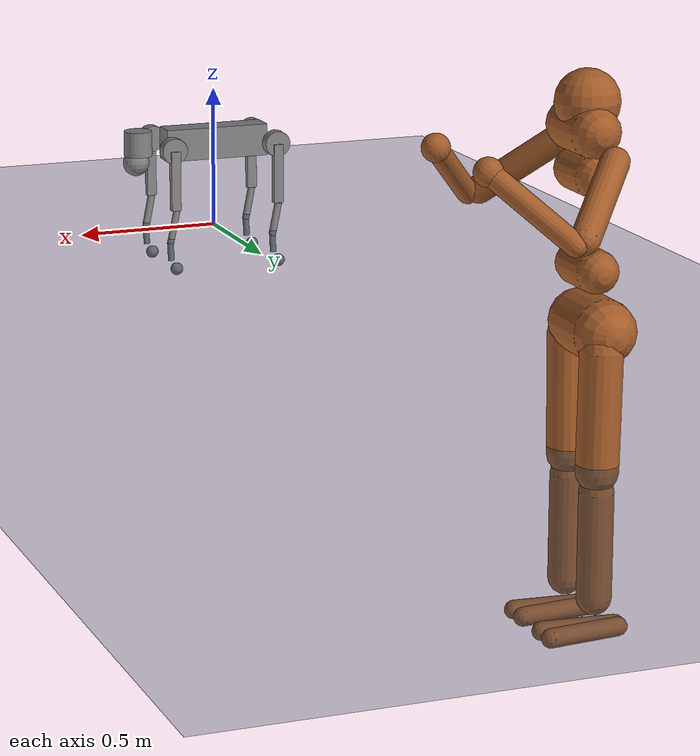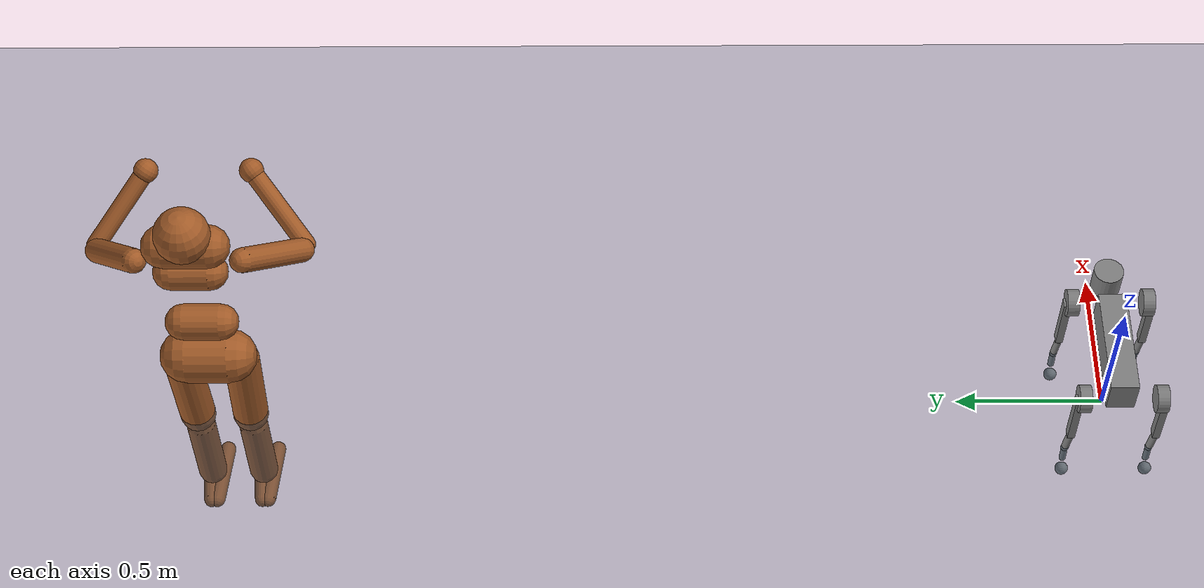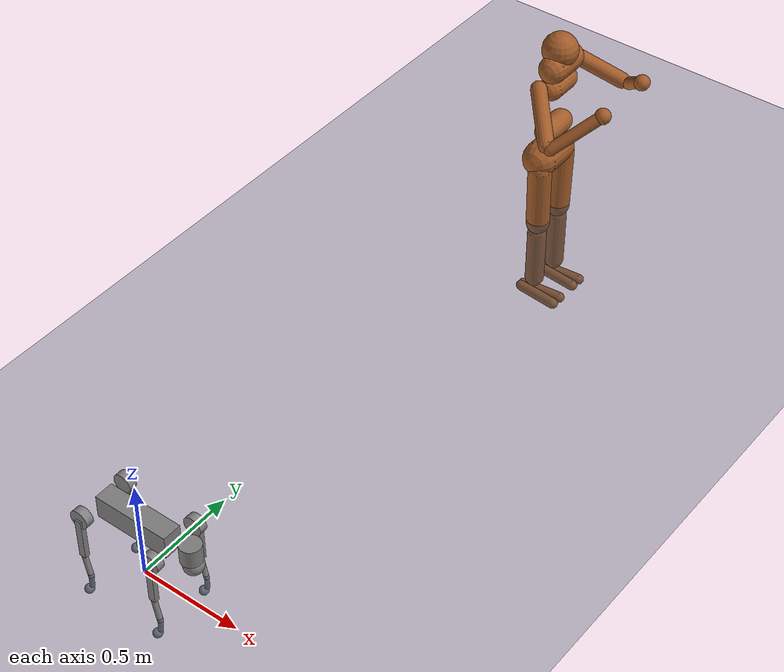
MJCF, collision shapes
<?xml version="1.0" ?>
<mujoco model="go2_human_follow">
  <compiler angle="radian" meshdir="unitree_go2/assets" autolimits="true"/>

  <option timestep="0.005" cone="elliptic" impratio="100" gravity="0 0 -9.81"/>

  <visual>
    <map force="0.1" zfar="30"/>
    <rgba haze="0.15 0.25 0.35 1"/>
    <global offwidth="2560" offheight="1440" elevation="-20" azimuth="120"/>
  </visual>

  <statistic center="0 0 0.7"/>

  <asset>
    <!-- 人体材质 -->
    <texture type="skybox" builtin="gradient" rgb1=".3 .5 .7" rgb2="0 0 0" width="32" height="512"/>
    <texture name="body" type="cube" builtin="flat" mark="cross" width="128" height="128" rgb1="0.8 0.6 0.4" rgb2="0.8 0.6 0.4" markrgb="1 1 1"/>
    <material name="body" texture="body" texuniform="true" rgba="0.8 0.6 .4 1"/>
    <texture name="grid" type="2d" builtin="checker" width="512" height="512" rgb1=".1 .2 .3" rgb2=".2 .3 .4"/>
    <material name="grid" texture="grid" texrepeat="1 1" texuniform="true" reflectance=".2"/>

    <!-- Go2材质 -->
    <material name="metal" rgba=".9 .95 .95 1"/>
    <material name="black" rgba="0 0 0 1"/>
    <material name="white" rgba="1 1 1 1"/>
    <material name="gray" rgba="0.671705 0.692426 0.774270 1"/>

    <!-- Go2网格文件 -->
    <mesh file="base_0.obj"/>
    <mesh file="base_1.obj"/>
    <mesh file="base_2.obj"/>
    <mesh file="base_3.obj"/>
    <mesh file="base_4.obj"/>
    <mesh file="hip_0.obj"/>
    <mesh file="hip_1.obj"/>
    <mesh file="thigh_0.obj"/>
    <mesh file="thigh_1.obj"/>
    <mesh file="thigh_mirror_0.obj"/>
    <mesh file="thigh_mirror_1.obj"/>
    <mesh file="calf_0.obj"/>
    <mesh file="calf_1.obj"/>
    <mesh file="calf_mirror_0.obj"/>
    <mesh file="calf_mirror_1.obj"/>
    <mesh file="foot.obj"/>
  </asset>

  <default>
    <!-- 人体默认设置 -->
    <motor ctrlrange="-1 1" ctrllimited="true"/>
    <default class="human_body">
      <geom type="capsule" condim="3" friction="0.8 0.005 0.0001" solimp=".95 .99 .001" solref=".02 1" material="body" group="1"/>
      <default class="thigh">
        <geom size=".06"/>
      </default>
      <default class="shin">
        <geom fromto="0 0 0 0 0 -.3"  size=".049"/>
      </default>
      <default class="foot">
        <geom size=".027"/>
        <default class="foot1">
          <geom fromto="-.07 -.01 0 .14 -.03 0"/>
        </default>
        <default class="foot2">
          <geom fromto="-.07 .01 0 .14  .03 0"/>
        </default>
      </default>
      <default class="arm_upper">
        <geom size=".04"/>
      </default>
      <default class="arm_lower">
        <geom size=".031"/>
      </default>
      <default class="hand">
        <geom type="sphere" size=".04"/>
      </default>
      <joint type="hinge" damping=".2" stiffness="1" armature=".01" limited="true" solimplimit="0 .99 .01"/>
      <default class="joint_big">
        <joint damping="5" stiffness="10"/>
        <default class="hip_x">
          <joint range="-30 10"/>
        </default>
        <default class="hip_z">
          <joint range="-60 35"/>
        </default>
        <default class="hip_y">
          <joint axis="0 1 0" range="-150 20"/>
        </default>
        <default class="joint_big_stiff">
          <joint stiffness="20"/>
        </default>
      </default>
      <default class="knee">
        <joint pos="0 0 .02" axis="0 -1 0" range="-160 2"/>
      </default>
      <default class="ankle">
        <joint range="-50 50"/>
        <default class="ankle_y">
          <joint pos="0 0 .08" axis="0 1 0" stiffness="6"/>
        </default>
        <default class="ankle_x">
          <joint pos="0 0 .04" stiffness="3"/>
        </default>
      </default>
      <default class="shoulder">
        <joint range="-85 60"/>
      </default>
      <default class="elbow">
        <joint range="-100 50" stiffness="0"/>
      </default>
    </default>

    <!-- Go2默认设置 -->
    <default class="go2">
      <geom friction="0.6" margin="0.001" condim="1"/>
      <joint axis="0 1 0" damping="2" armature="0.01" frictionloss="0.2"/>
      <motor ctrlrange="-23.7 23.7"/>
      <default class="go2_abduction">
        <joint axis="1 0 0" range="-1.0472 1.0472"/>
      </default>
      <default class="go2_hip">
        <default class="go2_front_hip">
          <joint range="-1.5708 3.4907"/>
        </default>
        <default class="go2_back_hip">
          <joint range="-0.5236 4.5379"/>
        </default>
      </default>
      <default class="go2_knee">
        <joint range="-2.7227 -0.83776"/>
        <motor ctrlrange="-45.43 45.43"/>
      </default>
      <default class="go2_visual">
        <geom type="mesh" contype="0" conaffinity="0" group="2"/>
      </default>
      <default class="go2_collision">
        <geom group="3"/>
        <default class="go2_foot">
          <geom size="0.022" pos="-0.002 0 -0.213" priority="1" solimp="0.015 1 0.022" condim="6"
            friction="0.8 0.02 0.01"/>
        </default>
      </default>
    </default>
  </default>

  <worldbody>
    <!-- 地面 -->
    <geom name="floor" size="0 0 .05" type="plane" material="grid" condim="3"/>

    <!-- 灯光 -->
    <light name="spotlight" mode="targetbodycom" target="human" diffuse=".8 .8 .8" specular="0.3 0.3 0.3" pos="0 -6 4" cutoff="30"/>
    <light name="top" pos="0 0 2" mode="trackcom"/>

    <!-- 人体模型 -->
    <body name="human" pos="0 3 0.9" childclass="human_body">
      <freejoint name="human_root"/>
      <camera name="human_back" pos="-3 0 1" xyaxes="0 -1 0 1 0 2" mode="trackcom"/>
      <camera name="human_side" pos="0 -3 1" xyaxes="1 0 0 0 1 2" mode="trackcom"/>
      <inertial pos="0 0 0" mass="65" diaginertia="2.5 2.5 1.5"/>
      <geom name="torso" fromto="0 -.07 0 0 .07 0" size=".07"/>
      <body name="waist_upper" pos="-.01 0 -.12">
        <geom name="waist_upper_geom" fromto="0 -.06 0 0 .06 0" size=".06"/>
        <joint name="waist_joint" pos="0 0 .06" axis="0 0 1" range="-45 45" class="joint_big_stiff"/>
      <body name="head" pos="0 0 .19">
        <inertial pos="0 0 .05" mass="5" diaginertia="0.05 0.05 0.03"/>
        <geom name="head" type="sphere" size=".09"/>
        <camera name="human_egocentric" pos=".09 0 0" xyaxes="0 -1 0 .1 0 1" fovy="80"/>
      </body>
      <body name="waist_lower" pos="-.01 0 -.26">
        <inertial pos="0 0 -.05" mass="15" diaginertia="0.3 0.3 0.2"/>
        <geom name="waist_lower" fromto="0 -.06 0 0 .06 0" size=".06"/>
        <joint name="abdomen_z" pos="0 0 .065" axis="0 0 1" range="-45 45" class="joint_big_stiff"/>
        <joint name="abdomen_y" pos="0 0 .065" axis="0 1 0" range="-75 30" class="joint_big"/>
        <body name="pelvis" pos="0 0 -.165">
          <inertial pos="0 0 -.05" mass="10" diaginertia="0.2 0.2 0.15"/>
          <joint name="abdomen_x" pos="0 0 .1" axis="1 0 0" range="-35 35" class="joint_big"/>
          <geom name="butt" fromto="-.02 -.07 0 -.02 .07 0" size=".09"/>
          <body name="thigh_right" pos="0 -.1 -.04">
            <inertial pos="0 0 -.15" mass="6" diaginertia="0.1 0.1 0.05"/>
            <joint name="hip_x_right" axis="1 0 0" class="hip_x"/>
            <joint name="hip_z_right" axis="0 0 1" class="hip_z"/>
            <joint name="hip_y_right" class="hip_y"/>
            <geom name="thigh_right" fromto="0 0 0 0 .01 -.34" class="thigh"/>
            <body name="shin_right" pos="0 .01 -.4">
              <inertial pos="0 0 -.15" mass="3" diaginertia="0.04 0.04 0.02"/>
              <joint name="knee_right" class="knee"/>
              <geom name="shin_right" class="shin"/>
              <body name="foot_right" pos="0 0 -.39">
                <inertial pos="0 0 0" mass="1.5" diaginertia="0.01 0.01 0.005"/>
                <joint name="ankle_y_right" class="ankle_y"/>
                <joint name="ankle_x_right" class="ankle_x" axis="1 0 .5"/>
                <geom name="foot1_right" class="foot1"/>
                <geom name="foot2_right" class="foot2"/>
              </body>
            </body>
          </body>
          <body name="thigh_left" pos="0 .1 -.04">
            <inertial pos="0 0 -.15" mass="6" diaginertia="0.1 0.1 0.05"/>
            <joint name="hip_x_left" axis="-1 0 0" class="hip_x"/>
            <joint name="hip_z_left" axis="0 0 -1" class="hip_z"/>
            <joint name="hip_y_left" class="hip_y"/>
            <geom name="thigh_left" fromto="0 0 0 0 -.01 -.34" class="thigh"/>
            <body name="shin_left" pos="0 -.01 -.4">
              <inertial pos="0 0 -.15" mass="3" diaginertia="0.04 0.04 0.02"/>
              <joint name="knee_left" class="knee"/>
              <geom name="shin_left" fromto="0 0 0 0 0 -.3" class="shin"/>
              <body name="foot_left" pos="0 0 -.39">
                <inertial pos="0 0 0" mass="1.5" diaginertia="0.01 0.01 0.005"/>
                <joint name="ankle_y_left" class="ankle_y"/>
                <joint name="ankle_x_left" class="ankle_x" axis="-1 0 -.5"/>
                <geom name="foot1_left" class="foot1"/>
                <geom name="foot2_left" class="foot2"/>
              </body>
            </body>
          </body>
        </body>
      </body>
      <body name="upper_arm_right" pos="0 -.17 .06">
        <inertial pos="0.08 -0.08 -0.08" mass="2.5" diaginertia="0.03 0.03 0.015"/>
        <joint name="shoulder1_right" axis="2 1 1"  class="shoulder"/>
        <joint name="shoulder2_right" axis="0 -1 1" class="shoulder"/>
        <geom name="upper_arm_right" fromto="0 0 0 .16 -.16 -.16" class="arm_upper"/>
        <body name="lower_arm_right" pos=".18 -.18 -.18">
          <inertial pos="0.09 0.09 0.09" mass="1.5" diaginertia="0.015 0.015 0.008"/>
          <joint name="elbow_right" axis="0 -1 1" class="elbow"/>
          <geom name="lower_arm_right" fromto=".01 .01 .01 .17 .17 .17" class="arm_lower"/>
          <body name="hand_right" pos=".18 .18 .18">
            <inertial pos="0 0 0" mass="0.5" diaginertia="0.002 0.002 0.001"/>
            <geom name="hand_right" zaxis="1 1 1" class="hand"/>
          </body>
        </body>
      </body>
      <body name="upper_arm_left" pos="0 .17 .06">
        <inertial pos="0.08 0.08 -0.08" mass="2.5" diaginertia="0.03 0.03 0.015"/>
        <joint name="shoulder1_left" axis="-2 1 -1" class="shoulder"/>
        <joint name="shoulder2_left" axis="0 -1 -1"  class="shoulder"/>
        <geom name="upper_arm_left" fromto="0 0 0 .16 .16 -.16" class="arm_upper"/>
        <body name="lower_arm_left" pos=".18 .18 -.18">
          <inertial pos="0.09 -0.09 0.09" mass="1.5" diaginertia="0.015 0.015 0.008"/>
          <joint name="elbow_left" axis="0 -1 -1" class="elbow"/>
          <geom name="lower_arm_left" fromto=".01 -.01 .01 .17 -.17 .17" class="arm_lower"/>
          <body name="hand_left" pos=".18 -.18 .18">
            <inertial pos="0 0 0" mass="0.5" diaginertia="0.002 0.002 0.001"/>
            <geom name="hand_left" zaxis="1 -1 1" class="hand"/>
          </body>
        </body>
      </body>
    </body>
    </body>

    <!-- Go2机器人模型 -->
    <body name="robot" pos="0 0 0.31" childclass="go2">
      <inertial pos="0.021112 0 -0.005366" quat="-0.000543471 0.713435 -0.00173769 0.700719" mass="6.921"
        diaginertia="0.107027 0.0980771 0.0244531"/>
      <freejoint name="robot_root"/>
      <geom mesh="base_0" material="black" class="go2_visual"/>
      <geom mesh="base_1" material="black" class="go2_visual"/>
      <geom mesh="base_2" material="black" class="go2_visual"/>
      <geom mesh="base_3" material="white" class="go2_visual"/>
      <geom mesh="base_4" material="gray" class="go2_visual"/>
      <geom size="0.1881 0.04675 0.057" type="box" class="go2_collision"/>
      <geom size="0.05 0.045" pos="0.285 0 0.01" type="cylinder" class="go2_collision"/>
      <geom size="0.047" pos="0.293 0 -0.06" class="go2_collision"/>
      <site name="imu" pos="-0.02557 0 0.04232"/>
      <body name="FL_hip" pos="0.1934 0.0465 0">
        <inertial pos="-0.0054 0.00194 -0.000105" quat="0.497014 0.499245 0.505462 0.498237" mass="0.678"
          diaginertia="0.00088403 0.000596003 0.000479967"/>
        <joint name="FL_hip_joint" class="go2_abduction"/>
        <geom mesh="hip_0" material="metal" class="go2_visual"/>
        <geom mesh="hip_1" material="gray" class="go2_visual"/>
        <geom size="0.046 0.02" pos="0 0.08 0" quat="1 1 0 0" type="cylinder" class="go2_collision"/>
        <body name="FL_thigh" pos="0 0.0955 0">
          <inertial pos="-0.00374 -0.0223 -0.0327" quat="0.829533 0.0847635 -0.0200632 0.551623" mass="1.152"
            diaginertia="0.00594973 0.00584149 0.000878787"/>
          <joint name="FL_thigh_joint" class="go2_front_hip"/>
          <geom mesh="thigh_0" material="metal" class="go2_visual"/>
          <geom mesh="thigh_1" material="gray" class="go2_visual"/>
          <geom size="0.1065 0.01225 0.017" pos="0 0 -0.1065" quat="0.707107 0 0.707107 0" type="box" class="go2_collision"/>
          <body name="FL_calf" pos="0 0 -0.213">
            <inertial pos="0.00629595 -0.000622121 -0.141417" quat="0.710672 0.00154099 -0.00450087 0.703508"
              mass="0.241352" diaginertia="0.0014901 0.00146356 5.31397e-05"/>
            <joint name="FL_calf_joint" class="go2_knee"/>
            <geom mesh="calf_0" material="gray" class="go2_visual"/>
            <geom mesh="calf_1" material="black" class="go2_visual"/>
            <geom size="0.012 0.06" pos="0.008 0 -0.06" quat="0.994493 0 -0.104807 0" type="cylinder" class="go2_collision"/>
            <geom size="0.011 0.0325" pos="0.02 0 -0.148" quat="0.999688 0 0.0249974 0" type="cylinder" class="go2_collision"/>
            <geom pos="0 0 -0.213" mesh="foot" class="go2_visual" material="black"/>
            <geom name="FL" class="go2_foot"/>
          </body>
        </body>
      </body>
      <body name="FR_hip" pos="0.1934 -0.0465 0">
        <inertial pos="-0.0054 -0.00194 -0.000105" quat="0.498237 0.505462 0.499245 0.497014" mass="0.678"
          diaginertia="0.00088403 0.000596003 0.000479967"/>
        <joint name="FR_hip_joint" class="go2_abduction"/>
        <geom mesh="hip_0" material="metal" class="go2_visual" quat="4.63268e-05 1 0 0"/>
        <geom mesh="hip_1" material="gray" class="go2_visual" quat="4.63268e-05 1 0 0"/>
        <geom size="0.046 0.02" pos="0 -0.08 0" quat="0.707107 0.707107 0 0" type="cylinder" class="go2_collision"/>
        <body name="FR_thigh" pos="0 -0.0955 0">
          <inertial pos="-0.00374 0.0223 -0.0327" quat="0.551623 -0.0200632 0.0847635 0.829533" mass="1.152"
            diaginertia="0.00594973 0.00584149 0.000878787"/>
          <joint name="FR_thigh_joint" class="go2_front_hip"/>
          <geom mesh="thigh_mirror_0" material="metal" class="go2_visual"/>
          <geom mesh="thigh_mirror_1" material="gray" class="go2_visual"/>
          <geom size="0.1065 0.01225 0.017" pos="0 0 -0.1065" quat="0.707107 0 0.707107 0" type="box" class="go2_collision"/>
          <body name="FR_calf" pos="0 0 -0.213">
            <inertial pos="0.00629595 0.000622121 -0.141417" quat="0.703508 -0.00450087 0.00154099 0.710672"
              mass="0.241352" diaginertia="0.0014901 0.00146356 5.31397e-05"/>
            <joint name="FR_calf_joint" class="go2_knee"/>
            <geom mesh="calf_mirror_0" material="gray" class="go2_visual"/>
            <geom mesh="calf_mirror_1" material="black" class="go2_visual"/>
            <geom size="0.013 0.06" pos="0.01 0 -0.06" quat="0.995004 0 -0.0998334 0" type="cylinder" class="go2_collision"/>
            <geom size="0.011 0.0325" pos="0.02 0 -0.148" quat="0.999688 0 0.0249974 0" type="cylinder" class="go2_collision"/>
            <geom pos="0 0 -0.213" mesh="foot" class="go2_visual" material="black"/>
            <geom name="FR" class="go2_foot"/>
          </body>
        </body>
      </body>
      <body name="RL_hip" pos="-0.1934 0.0465 0">
        <inertial pos="0.0054 0.00194 -0.000105" quat="0.505462 0.498237 0.497014 0.499245" mass="0.678"
          diaginertia="0.00088403 0.000596003 0.000479967"/>
        <joint name="RL_hip_joint" class="go2_abduction"/>
        <geom mesh="hip_0" material="metal" class="go2_visual" quat="4.63268e-05 0 1 0"/>
        <geom mesh="hip_1" material="gray" class="go2_visual" quat="4.63268e-05 0 1 0"/>
        <geom size="0.046 0.02" pos="0 0.08 0" quat="0.707107 0.707107 0 0" type="cylinder" class="go2_collision"/>
        <body name="RL_thigh" pos="0 0.0955 0">
          <inertial pos="-0.00374 -0.0223 -0.0327" quat="0.829533 0.0847635 -0.0200632 0.551623" mass="1.152"
            diaginertia="0.00594973 0.00584149 0.000878787"/>
          <joint name="RL_thigh_joint" class="go2_back_hip"/>
          <geom mesh="thigh_0" material="metal" class="go2_visual"/>
          <geom mesh="thigh_1" material="gray" class="go2_visual"/>
          <geom size="0.1065 0.01225 0.017" pos="0 0 -0.1065" quat="0.707107 0 0.707107 0" type="box" class="go2_collision"/>
          <body name="RL_calf" pos="0 0 -0.213">
            <inertial pos="0.00629595 -0.000622121 -0.141417" quat="0.710672 0.00154099 -0.00450087 0.703508"
              mass="0.241352" diaginertia="0.0014901 0.00146356 5.31397e-05"/>
            <joint name="RL_calf_joint" class="go2_knee"/>
            <geom mesh="calf_0" material="gray" class="go2_visual"/>
            <geom mesh="calf_1" material="black" class="go2_visual"/>
            <geom size="0.013 0.06" pos="0.01 0 -0.06" quat="0.995004 0 -0.0998334 0" type="cylinder" class="go2_collision"/>
            <geom size="0.011 0.0325" pos="0.02 0 -0.148" quat="0.999688 0 0.0249974 0" type="cylinder" class="go2_collision"/>
            <geom pos="0 0 -0.213" mesh="foot" class="go2_visual" material="black"/>
            <geom name="RL" class="go2_foot"/>
          </body>
        </body>
      </body>
      <body name="RR_hip" pos="-0.1934 -0.0465 0">
        <inertial pos="0.0054 -0.00194 -0.000105" quat="0.499245 0.497014 0.498237 0.505462" mass="0.678"
          diaginertia="0.00088403 0.000596003 0.000479967"/>
        <joint name="RR_hip_joint" class="go2_abduction"/>
        <geom mesh="hip_0" material="metal" class="go2_visual" quat="2.14617e-09 4.63268e-05 4.63268e-05 -1"/>
        <geom mesh="hip_1" material="gray" class="go2_visual" quat="2.14617e-09 4.63268e-05 4.63268e-05 -1"/>
        <geom size="0.046 0.02" pos="0 -0.08 0" quat="0.707107 0.707107 0 0" type="cylinder" class="go2_collision"/>
        <body name="RR_thigh" pos="0 -0.0955 0">
          <inertial pos="-0.00374 0.0223 -0.0327" quat="0.551623 -0.0200632 0.0847635 0.829533" mass="1.152"
            diaginertia="0.00594973 0.00584149 0.000878787"/>
          <joint name="RR_thigh_joint" class="go2_back_hip"/>
          <geom mesh="thigh_mirror_0" material="metal" class="go2_visual"/>
          <geom mesh="thigh_mirror_1" material="gray" class="go2_visual"/>
          <geom size="0.1065 0.01225 0.017" pos="0 0 -0.1065" quat="0.707107 0 0.707107 0" type="box" class="go2_collision"/>
          <body name="RR_calf" pos="0 0 -0.213">
            <inertial pos="0.00629595 0.000622121 -0.141417" quat="0.703508 -0.00450087 0.00154099 0.710672"
              mass="0.241352" diaginertia="0.0014901 0.00146356 5.31397e-05"/>
            <joint name="RR_calf_joint" class="go2_knee"/>
            <geom mesh="calf_mirror_0" material="gray" class="go2_visual"/>
            <geom mesh="calf_mirror_1" material="black" class="go2_visual"/>
            <geom size="0.013 0.06" pos="0.01 0 -0.06" quat="0.995004 0 -0.0998334 0" type="cylinder" class="go2_collision"/>
            <geom size="0.011 0.0325" pos="0.02 0 -0.148" quat="0.999688 0 0.0249974 0" type="cylinder" class="go2_collision"/>
            <geom pos="0 0 -0.213" mesh="foot" class="go2_visual" material="black"/>
            <geom name="RR" class="go2_foot"/>
          </body>
        </body>
      </body>
    </body>
  </worldbody>

  <contact>
    <exclude body1="waist_lower" body2="thigh_right"/>
    <exclude body1="waist_lower" body2="thigh_left"/>
  </contact>

  <tendon>
    <fixed name="hamstring_right" limited="true" range="-0.3 2">
      <joint joint="hip_y_right" coef=".5"/>
      <joint joint="knee_right" coef="-.5"/>
    </fixed>
    <fixed name="hamstring_left" limited="true" range="-0.3 2">
      <joint joint="hip_y_left" coef=".5"/>
      <joint joint="knee_left" coef="-.5"/>
    </fixed>
  </tendon>

  <actuator>
    <!-- 人体执行器 -->
    <motor name="abdomen_z"       gear="40"  joint="abdomen_z"/>
    <motor name="abdomen_y"       gear="40"  joint="abdomen_y"/>
    <motor name="abdomen_x"       gear="40"  joint="abdomen_x"/>
    <motor name="hip_x_right"     gear="40"  joint="hip_x_right"/>
    <motor name="hip_z_right"     gear="40"  joint="hip_z_right"/>
    <motor name="hip_y_right"     gear="120" joint="hip_y_right"/>
    <motor name="knee_right"      gear="80"  joint="knee_right"/>
    <motor name="ankle_y_right"   gear="20"  joint="ankle_y_right"/>
    <motor name="ankle_x_right"   gear="20"  joint="ankle_x_right"/>
    <motor name="hip_x_left"      gear="40"  joint="hip_x_left"/>
    <motor name="hip_z_left"      gear="40"  joint="hip_z_left"/>
    <motor name="hip_y_left"      gear="120" joint="hip_y_left"/>
    <motor name="knee_left"       gear="80"  joint="knee_left"/>
    <motor name="ankle_y_left"    gear="20"  joint="ankle_y_left"/>
    <motor name="ankle_x_left"    gear="20"  joint="ankle_x_left"/>
    <motor name="shoulder1_right" gear="20"  joint="shoulder1_right"/>
    <motor name="shoulder2_right" gear="20"  joint="shoulder2_right"/>
    <motor name="elbow_right"     gear="40"  joint="elbow_right"/>
    <motor name="shoulder1_left"  gear="20"  joint="shoulder1_left"/>
    <motor name="shoulder2_left"  gear="20"  joint="shoulder2_left"/>
    <motor name="elbow_left"      gear="40"  joint="elbow_left"/>

    <!-- Go2执行器 -->
    <motor class="go2_abduction" name="FL_hip" joint="FL_hip_joint"/>
    <motor class="go2_hip" name="FL_thigh" joint="FL_thigh_joint"/>
    <motor class="go2_knee" name="FL_calf" joint="FL_calf_joint"/>
    <motor class="go2_abduction" name="FR_hip" joint="FR_hip_joint"/>
    <motor class="go2_hip" name="FR_thigh" joint="FR_thigh_joint"/>
    <motor class="go2_knee" name="FR_calf" joint="FR_calf_joint"/>
    <motor class="go2_abduction" name="RL_hip" joint="RL_hip_joint"/>
    <motor class="go2_hip" name="RL_thigh" joint="RL_thigh_joint"/>
    <motor class="go2_knee" name="RL_calf" joint="RL_calf_joint"/>
    <motor class="go2_abduction" name="RR_hip" joint="RR_hip_joint"/>
    <motor class="go2_hip" name="RR_thigh" joint="RR_thigh_joint"/>
    <motor class="go2_knee" name="RR_calf" joint="RR_calf_joint"/>
  </actuator>

  <keyframe>
    <!-- 人体关键帧 -->
    <key name="human_home" qpos="0 3 0.27 1 0 0 0 0 0 0 0 0 0 0 0 0 0 0 0 0 0 0 0 0 0 0 0 0"/>

    <!-- Go2关键帧 -->
    <key name="robot_home" qpos="0 0 0.27 1 0 0 0 0 0.9 -1.8 0 0.9 -1.8 0 0.9 -1.8 0 0.9 -1.8"
      ctrl="0 0.9 -1.8 0 0.9 -1.8 0 0.9 -1.8 0 0.9 -1.8"/>
  </keyframe>
</mujoco>
